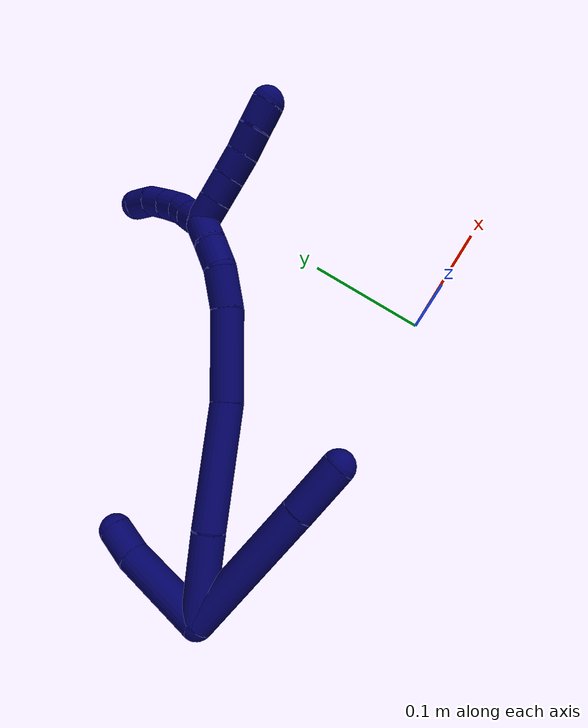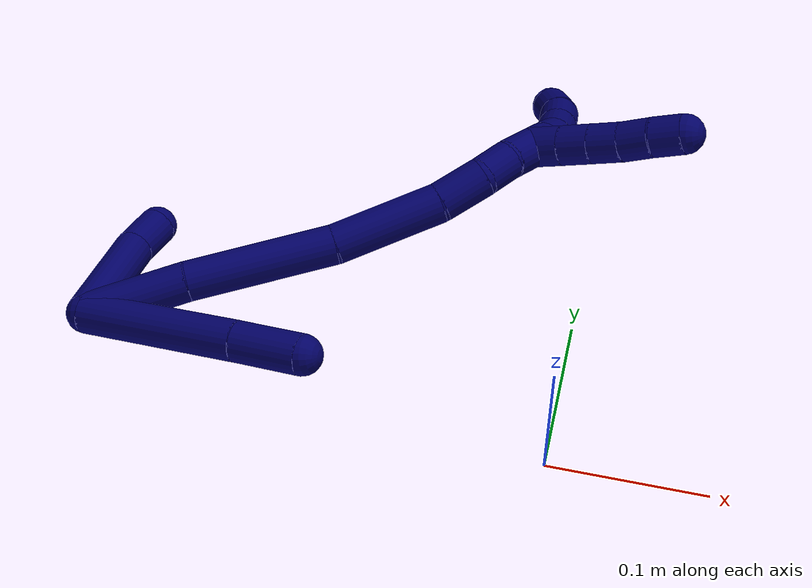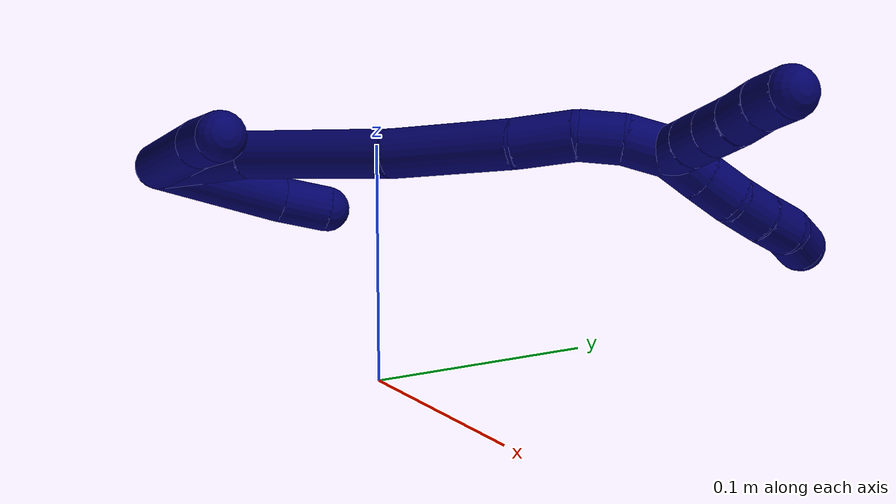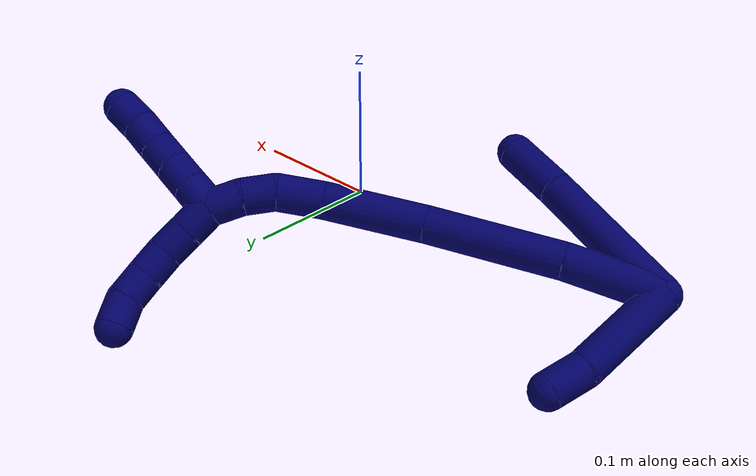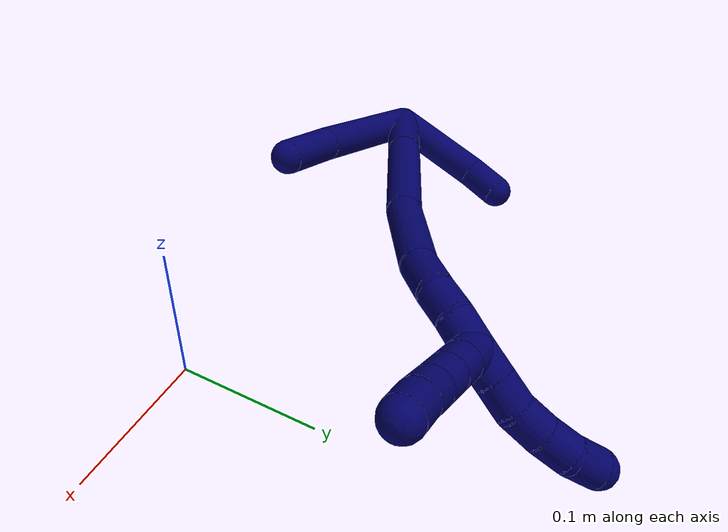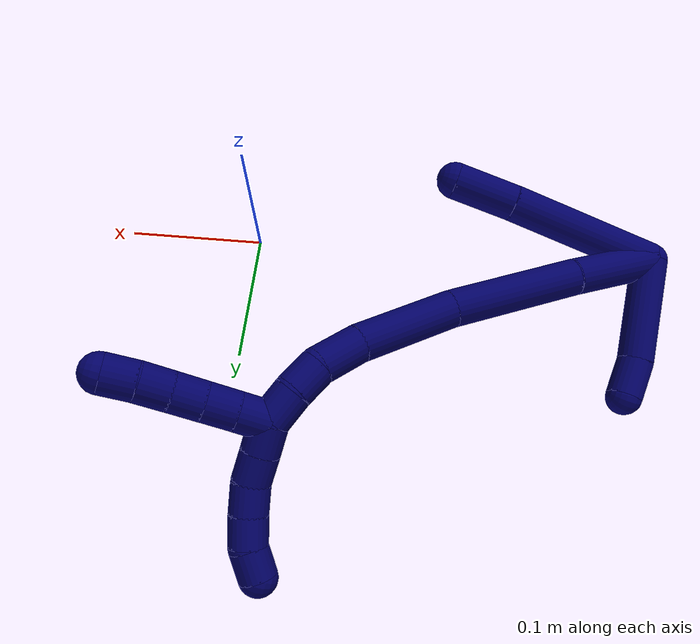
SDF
<sdf version="1.7">
 <world name="default">
  <model name="7">
   <static>0</static>
   <link name="7">
    <collision name="collision-cylinder-e_1_2_8">
     <pose>-0.000884 -0.005729 -0.053177 3.03427 -0.016533 -0.305418</pose>
     <geometry><cylinder><radius>0.0125</radius><length>0.106983</length></cylinder></geometry>
     <surface>
      <friction><ode><mu>1.16</mu><mu2>1.16</mu2><slip1>0</slip1><slip2>0</slip2></ode></friction>
      <contact><ode><kp>1e+06</kp><kd>1</kd><max_vel>0</max_vel><min_depth>0.001</min_depth></ode></contact>
     </surface>
    </collision>
    <visual name="visual-cylinder-e_1_2_8">
     <pose>-0.000884 -0.005729 -0.053177 3.03427 -0.016533 -0.305418</pose>
     <geometry><cylinder><radius>0.0125</radius><length>0.106983</length></cylinder></geometry>
     <material><ambient>0.003922 0 0.403922 1</ambient></material>
    </visual>
    <collision name="collision-cylinder-e_2_8_6">
     <pose>-0.003004 -0.013819 -0.127696 3.03143 -0.057458 -0.96089</pose>
     <geometry><cylinder><radius>0.0125</radius><length>0.043017</length></cylinder></geometry>
     <surface>
      <friction><ode><mu>1.16</mu><mu2>1.16</mu2><slip1>0</slip1><slip2>0</slip2></ode></friction>
      <contact><ode><kp>1e+06</kp><kd>1</kd><max_vel>0</max_vel><min_depth>0.001</min_depth></ode></contact>
     </surface>
    </collision>
    <visual name="visual-cylinder-e_2_8_6">
     <pose>-0.003004 -0.013819 -0.127696 3.03143 -0.057458 -0.96089</pose>
     <geometry><cylinder><radius>0.0125</radius><length>0.043017</length></cylinder></geometry>
     <material><ambient>0.003922 0 0.403922 1</ambient></material>
    </visual>
    <collision name="collision-cylinder-e_1_2_9">
     <pose>-0.019922 0.030357 0.003233 -1.4647 -0.578186 0.522633</pose>
     <geometry><cylinder><radius>0.0125</radius><length>0.072908</length></cylinder></geometry>
     <surface>
      <friction><ode><mu>1.16</mu><mu2>1.16</mu2><slip1>0</slip1><slip2>0</slip2></ode></friction>
      <contact><ode><kp>1e+06</kp><kd>1</kd><max_vel>0</max_vel><min_depth>0.001</min_depth></ode></contact>
     </surface>
    </collision>
    <visual name="visual-cylinder-e_1_2_9">
     <pose>-0.019922 0.030357 0.003233 -1.4647 -0.578186 0.522633</pose>
     <geometry><cylinder><radius>0.0125</radius><length>0.072908</length></cylinder></geometry>
     <material><ambient>0.003922 0 0.403922 1</ambient></material>
    </visual>
    <collision name="collision-cylinder-e_2_9_5">
     <pose>-0.046981 0.072135 0.005009 -1.6977 -0.554869 0.625607</pose>
     <geometry><cylinder><radius>0.0125</radius><length>0.027092</length></cylinder></geometry>
     <surface>
      <friction><ode><mu>1.16</mu><mu2>1.16</mu2><slip1>0</slip1><slip2>0</slip2></ode></friction>
      <contact><ode><kp>1e+06</kp><kd>1</kd><max_vel>0</max_vel><min_depth>0.001</min_depth></ode></contact>
     </surface>
    </collision>
    <visual name="visual-cylinder-e_2_9_5">
     <pose>-0.046981 0.072135 0.005009 -1.6977 -0.554869 0.625607</pose>
     <geometry><cylinder><radius>0.0125</radius><length>0.027092</length></cylinder></geometry>
     <material><ambient>0.003922 0 0.403922 1</ambient></material>
    </visual>
    <collision name="collision-cylinder-e_1_2_10">
     <pose>-0.006561 0.014695 -0.02769 -2.65369 -0.206321 0.78833</pose>
     <geometry><cylinder><radius>0.0125</radius><length>0.064053</length></cylinder></geometry>
     <surface>
      <friction><ode><mu>1.16</mu><mu2>1.16</mu2><slip1>0</slip1><slip2>0</slip2></ode></friction>
      <contact><ode><kp>1e+06</kp><kd>1</kd><max_vel>0</max_vel><min_depth>0.001</min_depth></ode></contact>
     </surface>
    </collision>
    <visual name="visual-cylinder-e_1_2_10">
     <pose>-0.006561 0.014695 -0.02769 -2.65369 -0.206321 0.78833</pose>
     <geometry><cylinder><radius>0.0125</radius><length>0.064053</length></cylinder></geometry>
     <material><ambient>0.003922 0 0.403922 1</ambient></material>
    </visual>
    <collision name="collision-cylinder-e_2_10_11">
     <pose>-0.026472 0.049406 -0.094478 -2.66844 -0.295065 1.1048</pose>
     <geometry><cylinder><radius>0.0125</radius><length>0.091817</length></cylinder></geometry>
     <surface>
      <friction><ode><mu>1.16</mu><mu2>1.16</mu2><slip1>0</slip1><slip2>0</slip2></ode></friction>
      <contact><ode><kp>1e+06</kp><kd>1</kd><max_vel>0</max_vel><min_depth>0.001</min_depth></ode></contact>
     </surface>
    </collision>
    <visual name="visual-cylinder-e_2_10_11">
     <pose>-0.026472 0.049406 -0.094478 -2.66844 -0.295065 1.1048</pose>
     <geometry><cylinder><radius>0.0125</radius><length>0.091817</length></cylinder></geometry>
     <material><ambient>0.003922 0 0.403922 1</ambient></material>
    </visual>
    <collision name="collision-cylinder-e_3_11_12">
     <pose>-0.048485 0.088473 -0.160727 -2.52973 -0.255477 0.77245</pose>
     <geometry><cylinder><radius>0.0125</radius><length>0.068559</length></cylinder></geometry>
     <surface>
      <friction><ode><mu>1.16</mu><mu2>1.16</mu2><slip1>0</slip1><slip2>0</slip2></ode></friction>
      <contact><ode><kp>1e+06</kp><kd>1</kd><max_vel>0</max_vel><min_depth>0.001</min_depth></ode></contact>
     </surface>
    </collision>
    <visual name="visual-cylinder-e_3_11_12">
     <pose>-0.048485 0.088473 -0.160727 -2.52973 -0.255477 0.77245</pose>
     <geometry><cylinder><radius>0.0125</radius><length>0.068559</length></cylinder></geometry>
     <material><ambient>0.003922 0 0.403922 1</ambient></material>
    </visual>
    <collision name="collision-cylinder-e_4_12_13">
     <pose>-0.060576 0.118273 -0.19859 -2.35452 -0.222135 0.524838</pose>
     <geometry><cylinder><radius>0.0125</radius><length>0.031116</length></cylinder></geometry>
     <surface>
      <friction><ode><mu>1.16</mu><mu2>1.16</mu2><slip1>0</slip1><slip2>0</slip2></ode></friction>
      <contact><ode><kp>1e+06</kp><kd>1</kd><max_vel>0</max_vel><min_depth>0.001</min_depth></ode></contact>
     </surface>
    </collision>
    <visual name="visual-cylinder-e_4_12_13">
     <pose>-0.060576 0.118273 -0.19859 -2.35452 -0.222135 0.524838</pose>
     <geometry><cylinder><radius>0.0125</radius><length>0.031116</length></cylinder></geometry>
     <material><ambient>0.003922 0 0.403922 1</ambient></material>
    </visual>
    <collision name="collision-cylinder-e_5_13_14">
     <pose>-0.068809 0.137419 -0.214512 -2.12597 -0.452632 0.784645</pose>
     <geometry><cylinder><radius>0.0125</radius><length>0.021978</length></cylinder></geometry>
     <surface>
      <friction><ode><mu>1.16</mu><mu2>1.16</mu2><slip1>0</slip1><slip2>0</slip2></ode></friction>
      <contact><ode><kp>1e+06</kp><kd>1</kd><max_vel>0</max_vel><min_depth>0.001</min_depth></ode></contact>
     </surface>
    </collision>
    <visual name="visual-cylinder-e_5_13_14">
     <pose>-0.068809 0.137419 -0.214512 -2.12597 -0.452632 0.784645</pose>
     <geometry><cylinder><radius>0.0125</radius><length>0.021978</length></cylinder></geometry>
     <material><ambient>0.003922 0 0.403922 1</ambient></material>
    </visual>
    <collision name="collision-cylinder-e_6_14_1">
     <pose>-0.08038 0.153736 -0.223941 -2.06049 -0.646016 1.0175</pose>
     <geometry><cylinder><radius>0.0125</radius><length>0.022477</length></cylinder></geometry>
     <surface>
      <friction><ode><mu>1.16</mu><mu2>1.16</mu2><slip1>0</slip1><slip2>0</slip2></ode></friction>
      <contact><ode><kp>1e+06</kp><kd>1</kd><max_vel>0</max_vel><min_depth>0.001</min_depth></ode></contact>
     </surface>
    </collision>
    <visual name="visual-cylinder-e_6_14_1">
     <pose>-0.08038 0.153736 -0.223941 -2.06049 -0.646016 1.0175</pose>
     <geometry><cylinder><radius>0.0125</radius><length>0.022477</length></cylinder></geometry>
     <material><ambient>0.003922 0 0.403922 1</ambient></material>
    </visual>
    <collision name="collision-cylinder-e_1_1_15">
     <pose>-0.09516 0.167625 -0.227787 -1.50811 -0.929591 0.880273</pose>
     <geometry><cylinder><radius>0.0125</radius><length>0.02</length></cylinder></geometry>
     <surface>
      <friction><ode><mu>1.16</mu><mu2>1.16</mu2><slip1>0</slip1><slip2>0</slip2></ode></friction>
      <contact><ode><kp>1e+06</kp><kd>1</kd><max_vel>0</max_vel><min_depth>0.001</min_depth></ode></contact>
     </surface>
    </collision>
    <visual name="visual-cylinder-e_1_1_15">
     <pose>-0.09516 0.167625 -0.227787 -1.50811 -0.929591 0.880273</pose>
     <geometry><cylinder><radius>0.0125</radius><length>0.02</length></cylinder></geometry>
     <material><ambient>0.003922 0 0.403922 1</ambient></material>
    </visual>
    <collision name="collision-cylinder-e_2_15_16">
     <pose>-0.111133 0.179646 -0.227208 -1.53709 -0.92056 0.893999</pose>
     <geometry><cylinder><radius>0.0125</radius><length>0.02</length></cylinder></geometry>
     <surface>
      <friction><ode><mu>1.16</mu><mu2>1.16</mu2><slip1>0</slip1><slip2>0</slip2></ode></friction>
      <contact><ode><kp>1e+06</kp><kd>1</kd><max_vel>0</max_vel><min_depth>0.001</min_depth></ode></contact>
     </surface>
    </collision>
    <visual name="visual-cylinder-e_2_15_16">
     <pose>-0.111133 0.179646 -0.227208 -1.53709 -0.92056 0.893999</pose>
     <geometry><cylinder><radius>0.0125</radius><length>0.02</length></cylinder></geometry>
     <material><ambient>0.003922 0 0.403922 1</ambient></material>
    </visual>
    <collision name="collision-cylinder-e_3_16_17">
     <pose>-0.125811 0.192774 -0.224821 -1.27154 -0.736667 0.554952</pose>
     <geometry><cylinder><radius>0.0125</radius><length>0.02</length></cylinder></geometry>
     <surface>
      <friction><ode><mu>1.16</mu><mu2>1.16</mu2><slip1>0</slip1><slip2>0</slip2></ode></friction>
      <contact><ode><kp>1e+06</kp><kd>1</kd><max_vel>0</max_vel><min_depth>0.001</min_depth></ode></contact>
     </surface>
    </collision>
    <visual name="visual-cylinder-e_3_16_17">
     <pose>-0.125811 0.192774 -0.224821 -1.27154 -0.736667 0.554952</pose>
     <geometry><cylinder><radius>0.0125</radius><length>0.02</length></cylinder></geometry>
     <material><ambient>0.003922 0 0.403922 1</ambient></material>
    </visual>
    <collision name="collision-cylinder-e_4_17_18">
     <pose>-0.138584 0.207292 -0.219811 -1.20782 -0.650368 0.457072</pose>
     <geometry><cylinder><radius>0.0125</radius><length>0.02</length></cylinder></geometry>
     <surface>
      <friction><ode><mu>1.16</mu><mu2>1.16</mu2><slip1>0</slip1><slip2>0</slip2></ode></friction>
      <contact><ode><kp>1e+06</kp><kd>1</kd><max_vel>0</max_vel><min_depth>0.001</min_depth></ode></contact>
     </surface>
    </collision>
    <visual name="visual-cylinder-e_4_17_18">
     <pose>-0.138584 0.207292 -0.219811 -1.20782 -0.650368 0.457072</pose>
     <geometry><cylinder><radius>0.0125</radius><length>0.02</length></cylinder></geometry>
     <material><ambient>0.003922 0 0.403922 1</ambient></material>
    </visual>
    <collision name="collision-cylinder-e_5_18_4">
     <pose>-0.150174 0.220828 -0.211311 -0.821184 -0.586616 0.261459</pose>
     <geometry><cylinder><radius>0.0125</radius><length>0.02</length></cylinder></geometry>
     <surface>
      <friction><ode><mu>1.16</mu><mu2>1.16</mu2><slip1>0</slip1><slip2>0</slip2></ode></friction>
      <contact><ode><kp>1e+06</kp><kd>1</kd><max_vel>0</max_vel><min_depth>0.001</min_depth></ode></contact>
     </surface>
    </collision>
    <visual name="visual-cylinder-e_5_18_4">
     <pose>-0.150174 0.220828 -0.211311 -0.821184 -0.586616 0.261459</pose>
     <geometry><cylinder><radius>0.0125</radius><length>0.02</length></cylinder></geometry>
     <material><ambient>0.003922 0 0.403922 1</ambient></material>
    </visual>
    <collision name="collision-cylinder-e_1_1_19">
     <pose>-0.08641 0.161996 -0.238129 -3.10747 0.073684 -2.27454</pose>
     <geometry><cylinder><radius>0.0125</radius><length>0.02</length></cylinder></geometry>
     <surface>
      <friction><ode><mu>1.16</mu><mu2>1.16</mu2><slip1>0</slip1><slip2>0</slip2></ode></friction>
      <contact><ode><kp>1e+06</kp><kd>1</kd><max_vel>0</max_vel><min_depth>0.001</min_depth></ode></contact>
     </surface>
    </collision>
    <visual name="visual-cylinder-e_1_1_19">
     <pose>-0.08641 0.161996 -0.238129 -3.10747 0.073684 -2.27454</pose>
     <geometry><cylinder><radius>0.0125</radius><length>0.02</length></cylinder></geometry>
     <material><ambient>0.003922 0 0.403922 1</ambient></material>
    </visual>
    <collision name="collision-cylinder-e_2_19_20">
     <pose>-0.084912 0.162744 -0.258059 -3.1007 0.076279 -2.15762</pose>
     <geometry><cylinder><radius>0.0125</radius><length>0.02</length></cylinder></geometry>
     <surface>
      <friction><ode><mu>1.16</mu><mu2>1.16</mu2><slip1>0</slip1><slip2>0</slip2></ode></friction>
      <contact><ode><kp>1e+06</kp><kd>1</kd><max_vel>0</max_vel><min_depth>0.001</min_depth></ode></contact>
     </surface>
    </collision>
    <visual name="visual-cylinder-e_2_19_20">
     <pose>-0.084912 0.162744 -0.258059 -3.1007 0.076279 -2.15762</pose>
     <geometry><cylinder><radius>0.0125</radius><length>0.02</length></cylinder></geometry>
     <material><ambient>0.003922 0 0.403922 1</ambient></material>
    </visual>
    <collision name="collision-cylinder-e_3_20_21">
     <pose>-0.083359 0.16356 -0.277982 -3.10061 0.079097 -2.18577</pose>
     <geometry><cylinder><radius>0.0125</radius><length>0.02</length></cylinder></geometry>
     <surface>
      <friction><ode><mu>1.16</mu><mu2>1.16</mu2><slip1>0</slip1><slip2>0</slip2></ode></friction>
      <contact><ode><kp>1e+06</kp><kd>1</kd><max_vel>0</max_vel><min_depth>0.001</min_depth></ode></contact>
     </surface>
    </collision>
    <visual name="visual-cylinder-e_3_20_21">
     <pose>-0.083359 0.16356 -0.277982 -3.10061 0.079097 -2.18577</pose>
     <geometry><cylinder><radius>0.0125</radius><length>0.02</length></cylinder></geometry>
     <material><ambient>0.003922 0 0.403922 1</ambient></material>
    </visual>
    <collision name="collision-cylinder-e_4_21_22">
     <pose>-0.081104 0.16494 -0.297786 -3.04314 0.147084 -1.96276</pose>
     <geometry><cylinder><radius>0.0125</radius><length>0.02</length></cylinder></geometry>
     <surface>
      <friction><ode><mu>1.16</mu><mu2>1.16</mu2><slip1>0</slip1><slip2>0</slip2></ode></friction>
      <contact><ode><kp>1e+06</kp><kd>1</kd><max_vel>0</max_vel><min_depth>0.001</min_depth></ode></contact>
     </surface>
    </collision>
    <visual name="visual-cylinder-e_4_21_22">
     <pose>-0.081104 0.16494 -0.297786 -3.04314 0.147084 -1.96276</pose>
     <geometry><cylinder><radius>0.0125</radius><length>0.02</length></cylinder></geometry>
     <material><ambient>0.003922 0 0.403922 1</ambient></material>
    </visual>
    <collision name="collision-cylinder-e_5_22_3">
     <pose>-0.079161 0.166973 -0.317562 -3.03529 0.047753 -0.843872</pose>
     <geometry><cylinder><radius>0.0125</radius><length>0.02</length></cylinder></geometry>
     <surface>
      <friction><ode><mu>1.16</mu><mu2>1.16</mu2><slip1>0</slip1><slip2>0</slip2></ode></friction>
      <contact><ode><kp>1e+06</kp><kd>1</kd><max_vel>0</max_vel><min_depth>0.001</min_depth></ode></contact>
     </surface>
    </collision>
    <visual name="visual-cylinder-e_5_22_3">
     <pose>-0.079161 0.166973 -0.317562 -3.03529 0.047753 -0.843872</pose>
     <geometry><cylinder><radius>0.0125</radius><length>0.02</length></cylinder></geometry>
     <material><ambient>0.003922 0 0.403922 1</ambient></material>
    </visual>
    <collision name="collision-sphere-3">
     <pose>-0.078683 0.168032 -0.327495 0 -0 0</pose>
     <geometry><sphere><radius>0.0125</radius></sphere></geometry>
     <surface>
      <friction><ode><mu>1.16</mu><mu2>1.16</mu2><slip1>0</slip1><slip2>0</slip2></ode></friction>
      <contact><ode><kp>1e+06</kp><kd>1</kd><max_vel>0</max_vel><min_depth>0.001</min_depth></ode></contact>
     </surface>
    </collision>
    <visual name="visual-sphere-3">
     <pose>-0.078683 0.168032 -0.327495 0 -0 0</pose>
     <geometry><sphere><radius>0.0125</radius></sphere></geometry>
     <material><ambient>0.003922 0 0.403922 1</ambient></material>
    </visual>
    <collision name="collision-sphere-22">
     <pose>-0.079638 0.165913 -0.30763 0 -0 0</pose>
     <geometry><sphere><radius>0.0125</radius></sphere></geometry>
     <surface>
      <friction><ode><mu>1.16</mu><mu2>1.16</mu2><slip1>0</slip1><slip2>0</slip2></ode></friction>
      <contact><ode><kp>1e+06</kp><kd>1</kd><max_vel>0</max_vel><min_depth>0.001</min_depth></ode></contact>
     </surface>
    </collision>
    <visual name="visual-sphere-22">
     <pose>-0.079638 0.165913 -0.30763 0 -0 0</pose>
     <geometry><sphere><radius>0.0125</radius></sphere></geometry>
     <material><ambient>0.003922 0 0.403922 1</ambient></material>
    </visual>
    <collision name="collision-sphere-21">
     <pose>-0.082569 0.163968 -0.287942 0 -0 0</pose>
     <geometry><sphere><radius>0.0125</radius></sphere></geometry>
     <surface>
      <friction><ode><mu>1.16</mu><mu2>1.16</mu2><slip1>0</slip1><slip2>0</slip2></ode></friction>
      <contact><ode><kp>1e+06</kp><kd>1</kd><max_vel>0</max_vel><min_depth>0.001</min_depth></ode></contact>
     </surface>
    </collision>
    <visual name="visual-sphere-21">
     <pose>-0.082569 0.163968 -0.287942 0 -0 0</pose>
     <geometry><sphere><radius>0.0125</radius></sphere></geometry>
     <material><ambient>0.003922 0 0.403922 1</ambient></material>
    </visual>
    <collision name="collision-sphere-20">
     <pose>-0.08415 0.163151 -0.268021 0 -0 0</pose>
     <geometry><sphere><radius>0.0125</radius></sphere></geometry>
     <surface>
      <friction><ode><mu>1.16</mu><mu2>1.16</mu2><slip1>0</slip1><slip2>0</slip2></ode></friction>
      <contact><ode><kp>1e+06</kp><kd>1</kd><max_vel>0</max_vel><min_depth>0.001</min_depth></ode></contact>
     </surface>
    </collision>
    <visual name="visual-sphere-20">
     <pose>-0.08415 0.163151 -0.268021 0 -0 0</pose>
     <geometry><sphere><radius>0.0125</radius></sphere></geometry>
     <material><ambient>0.003922 0 0.403922 1</ambient></material>
    </visual>
    <collision name="collision-sphere-19">
     <pose>-0.085674 0.162336 -0.248096 0 -0 0</pose>
     <geometry><sphere><radius>0.0125</radius></sphere></geometry>
     <surface>
      <friction><ode><mu>1.16</mu><mu2>1.16</mu2><slip1>0</slip1><slip2>0</slip2></ode></friction>
      <contact><ode><kp>1e+06</kp><kd>1</kd><max_vel>0</max_vel><min_depth>0.001</min_depth></ode></contact>
     </surface>
    </collision>
    <visual name="visual-sphere-19">
     <pose>-0.085674 0.162336 -0.248096 0 -0 0</pose>
     <geometry><sphere><radius>0.0125</radius></sphere></geometry>
     <material><ambient>0.003922 0 0.403922 1</ambient></material>
    </visual>
    <collision name="collision-sphere-10">
     <pose>-0.013122 0.029389 -0.05538 0 -0 0</pose>
     <geometry><sphere><radius>0.0125</radius></sphere></geometry>
     <surface>
      <friction><ode><mu>1.16</mu><mu2>1.16</mu2><slip1>0</slip1><slip2>0</slip2></ode></friction>
      <contact><ode><kp>1e+06</kp><kd>1</kd><max_vel>0</max_vel><min_depth>0.001</min_depth></ode></contact>
     </surface>
    </collision>
    <visual name="visual-sphere-10">
     <pose>-0.013122 0.029389 -0.05538 0 -0 0</pose>
     <geometry><sphere><radius>0.0125</radius></sphere></geometry>
     <material><ambient>0.003922 0 0.403922 1</ambient></material>
    </visual>
    <collision name="collision-sphere-5">
     <pose>-0.054118 0.083556 0.003552 0 -0 0</pose>
     <geometry><sphere><radius>0.0125</radius></sphere></geometry>
     <surface>
      <friction><ode><mu>1.16</mu><mu2>1.16</mu2><slip1>0</slip1><slip2>0</slip2></ode></friction>
      <contact><ode><kp>1e+06</kp><kd>1</kd><max_vel>0</max_vel><min_depth>0.001</min_depth></ode></contact>
     </surface>
    </collision>
    <visual name="visual-sphere-5">
     <pose>-0.054118 0.083556 0.003552 0 -0 0</pose>
     <geometry><sphere><radius>0.0125</radius></sphere></geometry>
     <material><ambient>0.003922 0 0.403922 1</ambient></material>
    </visual>
    <collision name="collision-sphere-6">
     <pose>-0.004239 -0.016179 -0.149039 0 -0 0</pose>
     <geometry><sphere><radius>0.0125</radius></sphere></geometry>
     <surface>
      <friction><ode><mu>1.16</mu><mu2>1.16</mu2><slip1>0</slip1><slip2>0</slip2></ode></friction>
      <contact><ode><kp>1e+06</kp><kd>1</kd><max_vel>0</max_vel><min_depth>0.001</min_depth></ode></contact>
     </surface>
    </collision>
    <visual name="visual-sphere-6">
     <pose>-0.004239 -0.016179 -0.149039 0 -0 0</pose>
     <geometry><sphere><radius>0.0125</radius></sphere></geometry>
     <material><ambient>0.003922 0 0.403922 1</ambient></material>
    </visual>
    <collision name="collision-sphere-9">
     <pose>-0.039845 0.060714 0.006466 0 -0 0</pose>
     <geometry><sphere><radius>0.0125</radius></sphere></geometry>
     <surface>
      <friction><ode><mu>1.16</mu><mu2>1.16</mu2><slip1>0</slip1><slip2>0</slip2></ode></friction>
      <contact><ode><kp>1e+06</kp><kd>1</kd><max_vel>0</max_vel><min_depth>0.001</min_depth></ode></contact>
     </surface>
    </collision>
    <visual name="visual-sphere-9">
     <pose>-0.039845 0.060714 0.006466 0 -0 0</pose>
     <geometry><sphere><radius>0.0125</radius></sphere></geometry>
     <material><ambient>0.003922 0 0.403922 1</ambient></material>
    </visual>
    <collision name="collision-sphere-2">
     <geometry><sphere><radius>0.0125</radius></sphere></geometry>
     <surface>
      <friction><ode><mu>1.16</mu><mu2>1.16</mu2><slip1>0</slip1><slip2>0</slip2></ode></friction>
      <contact><ode><kp>1e+06</kp><kd>1</kd><max_vel>0</max_vel><min_depth>0.001</min_depth></ode></contact>
     </surface>
    </collision>
    <visual name="visual-sphere-2">
     <geometry><sphere><radius>0.0125</radius></sphere></geometry>
     <material><ambient>0.003922 0 0.403922 1</ambient></material>
    </visual>
    <collision name="collision-sphere-8">
     <pose>-0.001769 -0.011458 -0.106353 0 -0 0</pose>
     <geometry><sphere><radius>0.0125</radius></sphere></geometry>
     <surface>
      <friction><ode><mu>1.16</mu><mu2>1.16</mu2><slip1>0</slip1><slip2>0</slip2></ode></friction>
      <contact><ode><kp>1e+06</kp><kd>1</kd><max_vel>0</max_vel><min_depth>0.001</min_depth></ode></contact>
     </surface>
    </collision>
    <visual name="visual-sphere-8">
     <pose>-0.001769 -0.011458 -0.106353 0 -0 0</pose>
     <geometry><sphere><radius>0.0125</radius></sphere></geometry>
     <material><ambient>0.003922 0 0.403922 1</ambient></material>
    </visual>
    <collision name="collision-sphere-11">
     <pose>-0.039823 0.069422 -0.133577 0 -0 0</pose>
     <geometry><sphere><radius>0.0125</radius></sphere></geometry>
     <surface>
      <friction><ode><mu>1.16</mu><mu2>1.16</mu2><slip1>0</slip1><slip2>0</slip2></ode></friction>
      <contact><ode><kp>1e+06</kp><kd>1</kd><max_vel>0</max_vel><min_depth>0.001</min_depth></ode></contact>
     </surface>
    </collision>
    <visual name="visual-sphere-11">
     <pose>-0.039823 0.069422 -0.133577 0 -0 0</pose>
     <geometry><sphere><radius>0.0125</radius></sphere></geometry>
     <material><ambient>0.003922 0 0.403922 1</ambient></material>
    </visual>
    <collision name="collision-sphere-12">
     <pose>-0.057148 0.107524 -0.187877 0 -0 0</pose>
     <geometry><sphere><radius>0.0125</radius></sphere></geometry>
     <surface>
      <friction><ode><mu>1.16</mu><mu2>1.16</mu2><slip1>0</slip1><slip2>0</slip2></ode></friction>
      <contact><ode><kp>1e+06</kp><kd>1</kd><max_vel>0</max_vel><min_depth>0.001</min_depth></ode></contact>
     </surface>
    </collision>
    <visual name="visual-sphere-12">
     <pose>-0.057148 0.107524 -0.187877 0 -0 0</pose>
     <geometry><sphere><radius>0.0125</radius></sphere></geometry>
     <material><ambient>0.003922 0 0.403922 1</ambient></material>
    </visual>
    <collision name="collision-sphere-13">
     <pose>-0.064003 0.129021 -0.209303 0 -0 0</pose>
     <geometry><sphere><radius>0.0125</radius></sphere></geometry>
     <surface>
      <friction><ode><mu>1.16</mu><mu2>1.16</mu2><slip1>0</slip1><slip2>0</slip2></ode></friction>
      <contact><ode><kp>1e+06</kp><kd>1</kd><max_vel>0</max_vel><min_depth>0.001</min_depth></ode></contact>
     </surface>
    </collision>
    <visual name="visual-sphere-13">
     <pose>-0.064003 0.129021 -0.209303 0 -0 0</pose>
     <geometry><sphere><radius>0.0125</radius></sphere></geometry>
     <material><ambient>0.003922 0 0.403922 1</ambient></material>
    </visual>
    <collision name="collision-sphere-14">
     <pose>-0.073615 0.145817 -0.21972 0 -0 0</pose>
     <geometry><sphere><radius>0.0125</radius></sphere></geometry>
     <surface>
      <friction><ode><mu>1.16</mu><mu2>1.16</mu2><slip1>0</slip1><slip2>0</slip2></ode></friction>
      <contact><ode><kp>1e+06</kp><kd>1</kd><max_vel>0</max_vel><min_depth>0.001</min_depth></ode></contact>
     </surface>
    </collision>
    <visual name="visual-sphere-14">
     <pose>-0.073615 0.145817 -0.21972 0 -0 0</pose>
     <geometry><sphere><radius>0.0125</radius></sphere></geometry>
     <material><ambient>0.003922 0 0.403922 1</ambient></material>
    </visual>
    <collision name="collision-sphere-1">
     <pose>-0.087146 0.161656 -0.228162 0 -0 0</pose>
     <geometry><sphere><radius>0.0125</radius></sphere></geometry>
     <surface>
      <friction><ode><mu>1.16</mu><mu2>1.16</mu2><slip1>0</slip1><slip2>0</slip2></ode></friction>
      <contact><ode><kp>1e+06</kp><kd>1</kd><max_vel>0</max_vel><min_depth>0.001</min_depth></ode></contact>
     </surface>
    </collision>
    <visual name="visual-sphere-1">
     <pose>-0.087146 0.161656 -0.228162 0 -0 0</pose>
     <geometry><sphere><radius>0.0125</radius></sphere></geometry>
     <material><ambient>0.003922 0 0.403922 1</ambient></material>
    </visual>
    <collision name="collision-sphere-18">
     <pose>-0.144638 0.214732 -0.216986 0 -0 0</pose>
     <geometry><sphere><radius>0.0125</radius></sphere></geometry>
     <surface>
      <friction><ode><mu>1.16</mu><mu2>1.16</mu2><slip1>0</slip1><slip2>0</slip2></ode></friction>
      <contact><ode><kp>1e+06</kp><kd>1</kd><max_vel>0</max_vel><min_depth>0.001</min_depth></ode></contact>
     </surface>
    </collision>
    <visual name="visual-sphere-18">
     <pose>-0.144638 0.214732 -0.216986 0 -0 0</pose>
     <geometry><sphere><radius>0.0125</radius></sphere></geometry>
     <material><ambient>0.003922 0 0.403922 1</ambient></material>
    </visual>
    <collision name="collision-sphere-15">
     <pose>-0.103174 0.173595 -0.227413 0 -0 0</pose>
     <geometry><sphere><radius>0.0125</radius></sphere></geometry>
     <surface>
      <friction><ode><mu>1.16</mu><mu2>1.16</mu2><slip1>0</slip1><slip2>0</slip2></ode></friction>
      <contact><ode><kp>1e+06</kp><kd>1</kd><max_vel>0</max_vel><min_depth>0.001</min_depth></ode></contact>
     </surface>
    </collision>
    <visual name="visual-sphere-15">
     <pose>-0.103174 0.173595 -0.227413 0 -0 0</pose>
     <geometry><sphere><radius>0.0125</radius></sphere></geometry>
     <material><ambient>0.003922 0 0.403922 1</ambient></material>
    </visual>
    <collision name="collision-sphere-16">
     <pose>-0.119092 0.185696 -0.227004 0 -0 0</pose>
     <geometry><sphere><radius>0.0125</radius></sphere></geometry>
     <surface>
      <friction><ode><mu>1.16</mu><mu2>1.16</mu2><slip1>0</slip1><slip2>0</slip2></ode></friction>
      <contact><ode><kp>1e+06</kp><kd>1</kd><max_vel>0</max_vel><min_depth>0.001</min_depth></ode></contact>
     </surface>
    </collision>
    <visual name="visual-sphere-16">
     <pose>-0.119092 0.185696 -0.227004 0 -0 0</pose>
     <geometry><sphere><radius>0.0125</radius></sphere></geometry>
     <material><ambient>0.003922 0 0.403922 1</ambient></material>
    </visual>
    <collision name="collision-sphere-17">
     <pose>-0.132529 0.199852 -0.222637 0 -0 0</pose>
     <geometry><sphere><radius>0.0125</radius></sphere></geometry>
     <surface>
      <friction><ode><mu>1.16</mu><mu2>1.16</mu2><slip1>0</slip1><slip2>0</slip2></ode></friction>
      <contact><ode><kp>1e+06</kp><kd>1</kd><max_vel>0</max_vel><min_depth>0.001</min_depth></ode></contact>
     </surface>
    </collision>
    <visual name="visual-sphere-17">
     <pose>-0.132529 0.199852 -0.222637 0 -0 0</pose>
     <geometry><sphere><radius>0.0125</radius></sphere></geometry>
     <material><ambient>0.003922 0 0.403922 1</ambient></material>
    </visual>
    <collision name="collision-sphere-4">
     <pose>-0.155709 0.226924 -0.205637 0 -0 0</pose>
     <geometry><sphere><radius>0.0125</radius></sphere></geometry>
     <surface>
      <friction><ode><mu>1.16</mu><mu2>1.16</mu2><slip1>0</slip1><slip2>0</slip2></ode></friction>
      <contact><ode><kp>1e+06</kp><kd>1</kd><max_vel>0</max_vel><min_depth>0.001</min_depth></ode></contact>
     </surface>
    </collision>
    <visual name="visual-sphere-4">
     <pose>-0.155709 0.226924 -0.205637 0 -0 0</pose>
     <geometry><sphere><radius>0.0125</radius></sphere></geometry>
     <material><ambient>0.003922 0 0.403922 1</ambient></material>
    </visual>
    <inertial>
     <pose>-0.046725 0.080569 -0.130953 0 -0 0</pose>
     <mass>0.75</mass>
     <inertia><ixx>0.000264</ixx><ixy>0</ixy><ixz>0</ixz><iyy>-3.7e-05</iyy><iyz>0</iyz><izz>-6e-05</izz></inertia>
    </inertial>
   </link>
   <pose>-0.286917 0.020872 0.043167 2.49849 -1.16306 -2.53832</pose>
  </model>
 </world>
</sdf>
